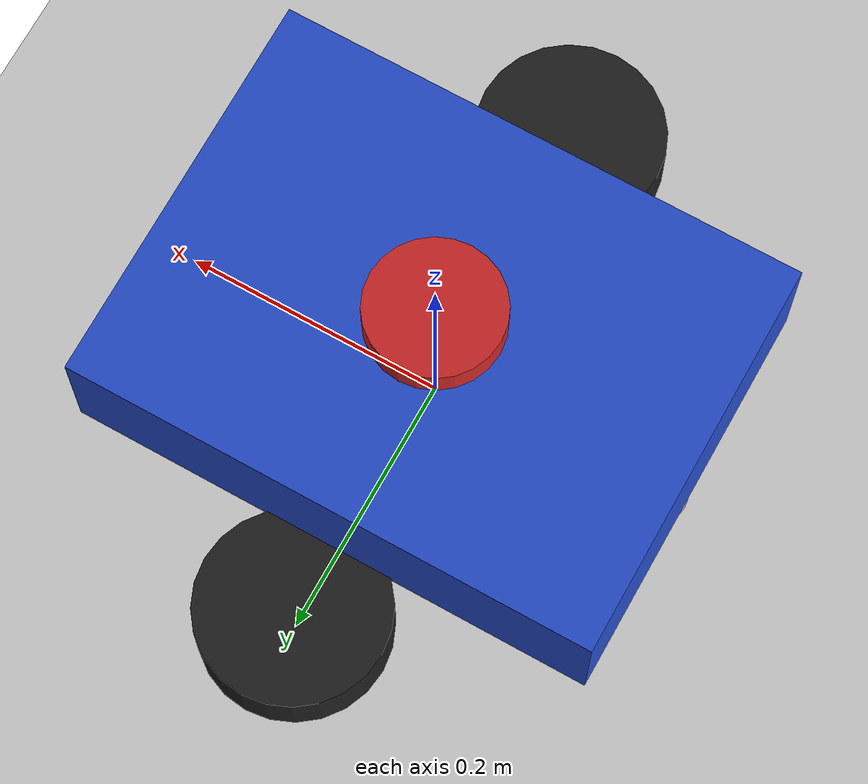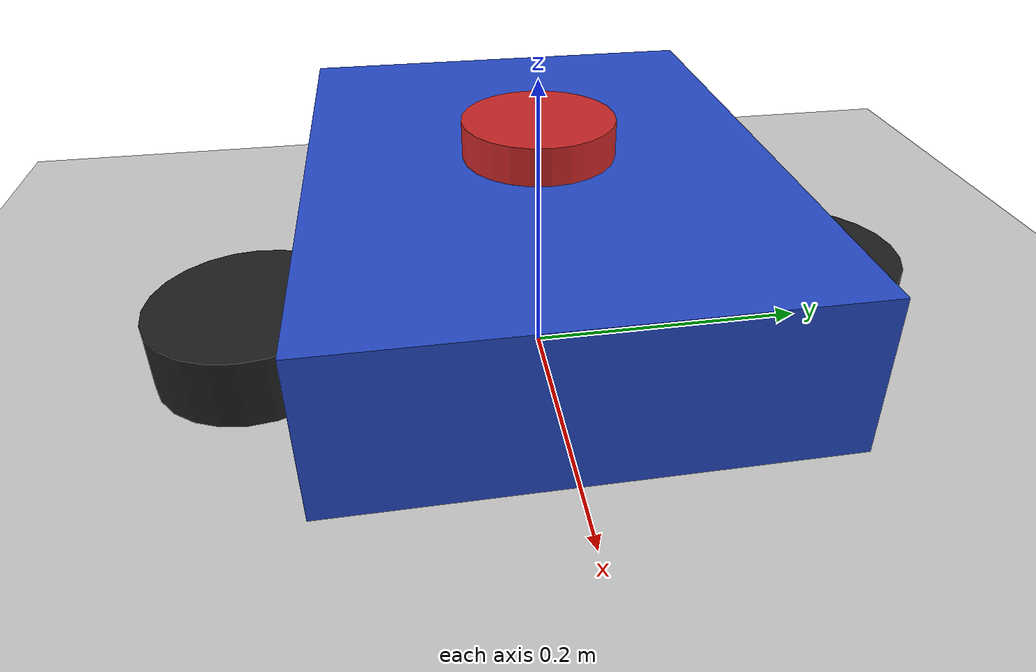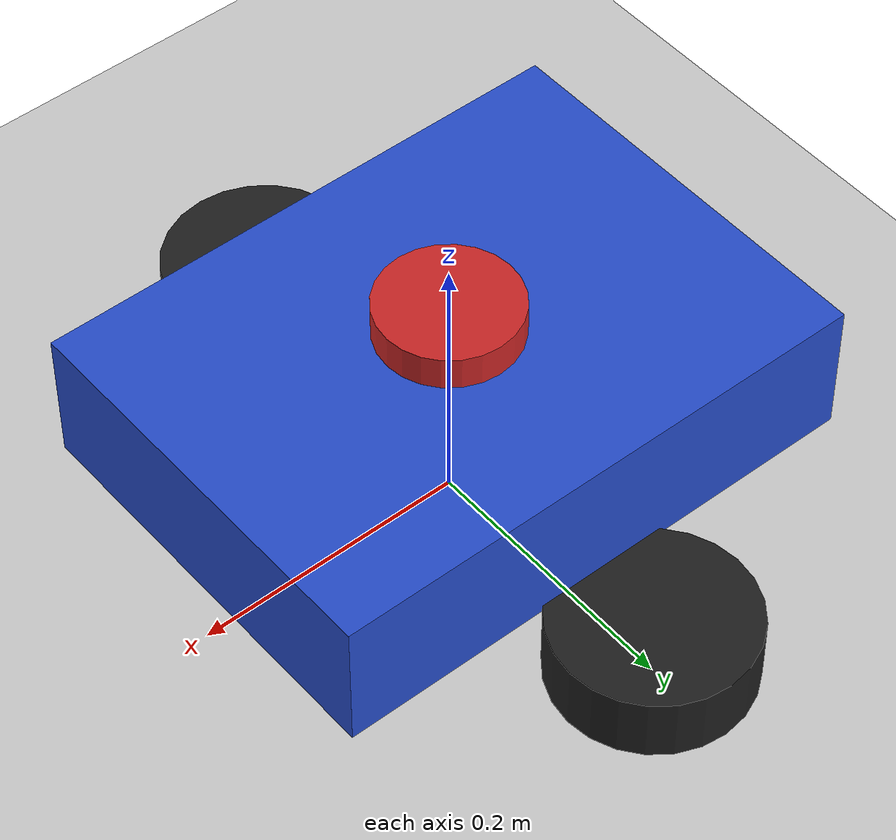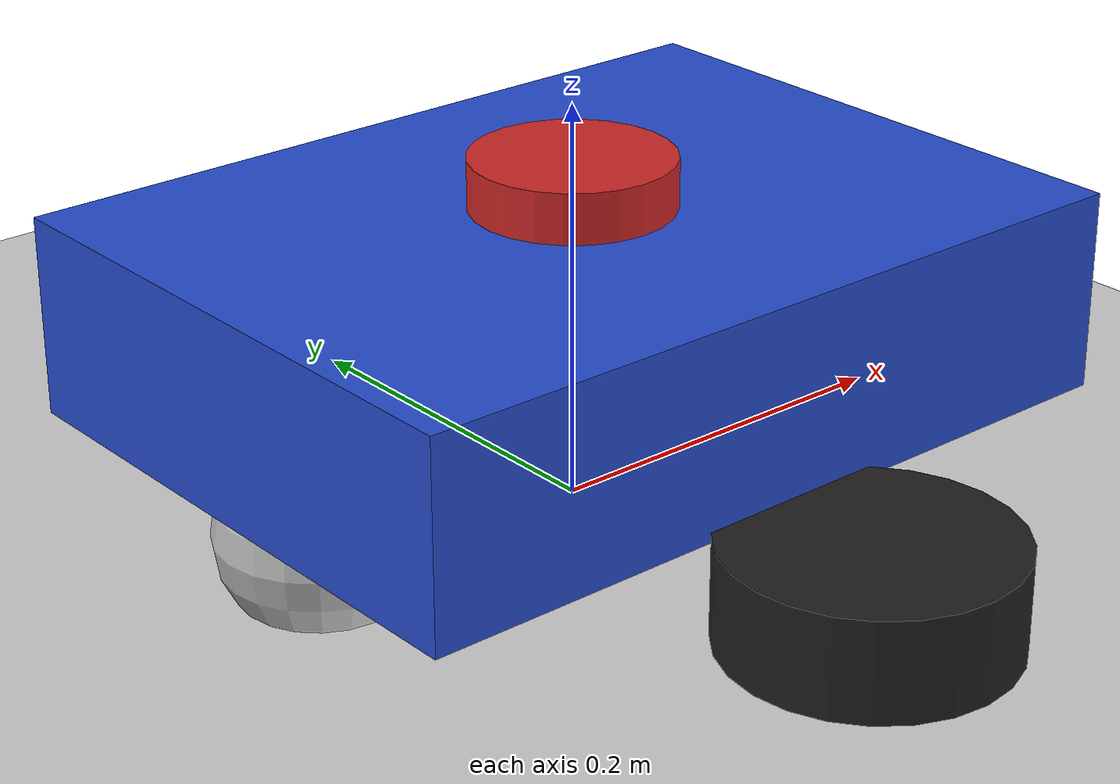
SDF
<sdf version="1.6">
 <world name="default">
  <include><uri>model://ground_plane</uri></include>
  <include><uri>model://sun</uri></include>
  <model name="delivery_bot">
   <link name="base_footprint">
    <inertial>
     <pose>-0.00566 0 0.051132 0 -0 0</pose>
     <mass>5.3</mass>
     <inertia>
      <ixx>0.103073</ixx>
      <ixy>0</ixy>
      <ixz>-0.000633962</ixz>
      <iyy>0.107403</iyy>
      <iyz>0</iyz>
      <izz>0.10633</izz>
     </inertia>
    </inertial>
    <collision name="base_footprint_fixed_joint_lump__base_link_collision">
     <pose>0 0 0.1 0 -0 0</pose>
     <geometry><box><size>0.4 0.3 0.1</size></box></geometry>
     <surface><friction><ode><mu>2</mu><mu2>2</mu2></ode></friction></surface>
    </collision>
    <collision name="base_footprint_fixed_joint_lump__caster_wheel_collision_1">
     <pose>-0.15 0 0.03 0 -0 0</pose>
     <geometry><sphere><radius>0.05</radius></sphere></geometry>
     <surface><friction><ode><mu>0</mu><mu2>0</mu2></ode></friction></surface>
    </collision>
    <collision name="base_footprint_fixed_joint_lump__lidar_link_collision_2">
     <pose>0 0 0.15 0 -0 0</pose>
     <geometry><cylinder><length>0.05</length><radius>0.05</radius></cylinder></geometry>
    </collision>
    <visual name="base_footprint_fixed_joint_lump__base_link_visual">
     <pose>0 0 0.1 0 -0 0</pose>
     <geometry><box><size>0.4 0.3 0.1</size></box></geometry>
     <material>
      <script><name>Gazebo/Blue</name><uri>file://media/materials/scripts/gazebo.material</uri></script>
     </material>
    </visual>
    <visual name="base_footprint_fixed_joint_lump__caster_wheel_visual_1">
     <pose>-0.15 0 0.03 0 -0 0</pose>
     <geometry><sphere><radius>0.05</radius></sphere></geometry>
    </visual>
    <visual name="base_footprint_fixed_joint_lump__lidar_link_visual_2">
     <pose>0 0 0.15 0 -0 0</pose>
     <geometry><cylinder><length>0.05</length><radius>0.05</radius></cylinder></geometry>
     <material>
      <script><name>Gazebo/Red</name><uri>file://media/materials/scripts/gazebo.material</uri></script>
     </material>
    </visual>
    <sensor name="lidar" type="ray">
     <update_rate>10</update_rate>
     <ray>
      <scan>
       <horizontal>
        <samples>360</samples>
        <min_angle>-3.14</min_angle>
        <max_angle>3.14</max_angle>
        <resolution>1</resolution>
       </horizontal>
      </scan>
      <range><min>0.1</min><max>10</max></range>
     </ray>
     <plugin name="gazebo_ros_laser" filename="libgazebo_ros_ray_sensor.so">
      <ros><namespace>/</namespace><remapping>~/out:=scan</remapping></ros>
      <output_type>sensor_msgs/LaserScan</output_type>
      <frame_name>lidar_link</frame_name>
     </plugin>
     <pose>0 0 0.15 0 -0 0</pose>
    </sensor>
   </link>
   <joint name="left_wheel_joint" type="revolute">
    <pose relative_to="base_footprint">0 0.2 0.03 0 -0 0</pose>
    <parent>base_footprint</parent>
    <child>left_wheel</child>
    <axis>
     <xyz>0 1 0</xyz>
     <limit><lower>-1e+16</lower><upper>1e+16</upper></limit>
     <dynamics>
      <damping>0.1</damping>
      <friction>0</friction>
      <spring_reference>0</spring_reference>
      <spring_stiffness>0</spring_stiffness>
     </dynamics>
    </axis>
   </joint>
   <link name="left_wheel">
    <pose relative_to="left_wheel_joint">0 0 0 0 -0 0</pose>
    <inertial>
     <mass>1</mass>
     <inertia><ixx>0.02</ixx><ixy>0</ixy><ixz>0</ixz><iyy>0.02</iyy><iyz>0</iyz><izz>0.02</izz></inertia>
    </inertial>
    <collision name="left_wheel_collision">
     <geometry><cylinder><length>0.05</length><radius>0.07</radius></cylinder></geometry>
    </collision>
    <visual name="left_wheel_visual">
     <geometry><cylinder><length>0.05</length><radius>0.07</radius></cylinder></geometry>
     <material>
      <script><name>Gazebo/Black</name><uri>file://media/materials/scripts/gazebo.material</uri></script>
     </material>
    </visual>
   </link>
   <joint name="right_wheel_joint" type="revolute">
    <pose relative_to="base_footprint">0 -0.2 0.03 0 -0 0</pose>
    <parent>base_footprint</parent>
    <child>right_wheel</child>
    <axis>
     <xyz>0 1 0</xyz>
     <limit><lower>-1e+16</lower><upper>1e+16</upper></limit>
     <dynamics>
      <damping>0.1</damping>
      <friction>0</friction>
      <spring_reference>0</spring_reference>
      <spring_stiffness>0</spring_stiffness>
     </dynamics>
    </axis>
   </joint>
   <link name="right_wheel">
    <pose relative_to="right_wheel_joint">0 0 0 0 -0 0</pose>
    <inertial>
     <mass>1</mass>
     <inertia><ixx>0.02</ixx><ixy>0</ixy><ixz>0</ixz><iyy>0.02</iyy><iyz>0</iyz><izz>0.02</izz></inertia>
    </inertial>
    <collision name="right_wheel_collision">
     <geometry><cylinder><length>0.05</length><radius>0.07</radius></cylinder></geometry>
    </collision>
    <visual name="right_wheel_visual">
     <geometry><cylinder><length>0.05</length><radius>0.07</radius></cylinder></geometry>
     <material>
      <script><name>Gazebo/Black</name><uri>file://media/materials/scripts/gazebo.material</uri></script>
     </material>
    </visual>
   </link>
   <plugin name="diff_drive" filename="libgazebo_ros_diff_drive.so">
    <ros><namespace>/</namespace></ros>
    <update_rate>50</update_rate>
    <left_joint>left_wheel_joint</left_joint>
    <right_joint>right_wheel_joint</right_joint>
    <wheel_separation>0.4</wheel_separation>
    <wheel_diameter>0.14</wheel_diameter>
    <cmd_vel_topic>cmd_vel</cmd_vel_topic>
    <odom_topic>odom</odom_topic>
    <publish_odom>1</publish_odom>
    <publish_odom_tf>1</publish_odom_tf>
    <cmd_vel_timeout>0.3</cmd_vel_timeout>
    <max_linear_velocity>0.6</max_linear_velocity>
    <max_angular_velocity>1.5</max_angular_velocity>
    <max_linear_acceleration>0.8</max_linear_acceleration>
    <max_angular_acceleration>1.5</max_angular_acceleration>
    <max_wheel_torque>10</max_wheel_torque>
    <max_wheel_acceleration>5</max_wheel_acceleration>
   </plugin>
   <static>0</static>
   <plugin name="joint_state_publisher" filename="libgazebo_ros_joint_state_publisher.so">
    <update_rate>50</update_rate>
    <joint_name>left_wheel_joint</joint_name>
    <joint_name>right_wheel_joint</joint_name>
   </plugin>
  </model>
  <scene><shadows>false</shadows></scene>
  <physics type="ode">
   <real_time_update_rate>1000.0</real_time_update_rate>
   <max_step_size>0.001</max_step_size>
   <real_time_factor>1</real_time_factor>
   <ode>
    <solver>
     <type>quick</type>
     <iters>150</iters>
     <precon_iters>0</precon_iters>
     <sor>1.400000</sor>
     <use_dynamic_moi_rescaling>1</use_dynamic_moi_rescaling>
    </solver>
    <constraints>
     <cfm>0.00001</cfm>
     <erp>0.2</erp>
     <contact_max_correcting_vel>2000.000000</contact_max_correcting_vel>
     <contact_surface_layer>0.01000</contact_surface_layer>
    </constraints>
   </ode>
  </physics>
 </world>
</sdf>
